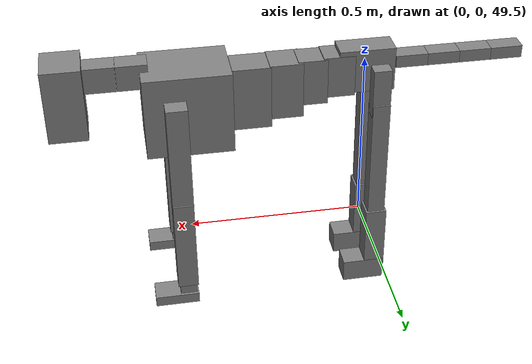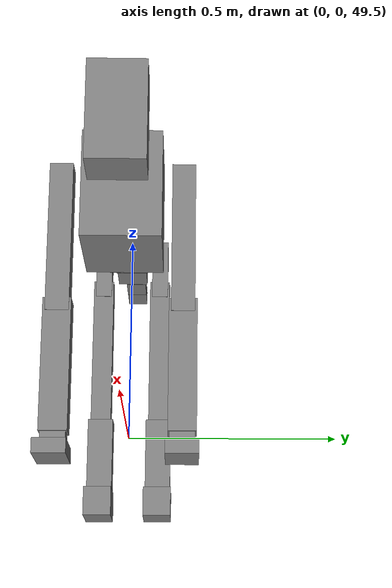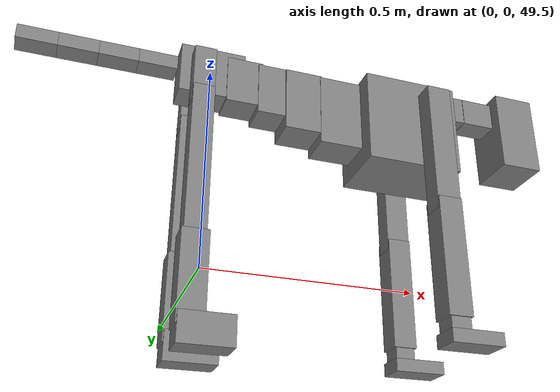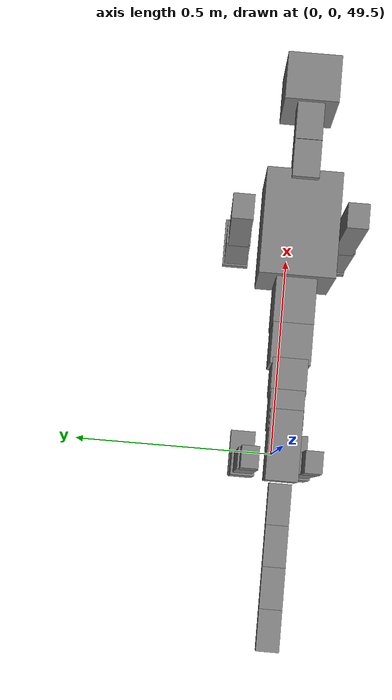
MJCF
<mujoco model="dog">

    <default>
        <joint armature="0.02" stiffness="1" damping="0.2" limited="true"/>
        <geom condim="3" friction="1 0.05 0.05" margin="0.01"/>
        <motor ctrllimited="true" ctrlrange="-1.0 1.0" forcelimited="true" gear="50"/>
    </default>

    <compiler inertiafromgeom="true" angle="radian"/>

    <option timestep="0.016" iterations="50" tolerance="1e-10" solver="Newton" jacobian="dense" cone="pyramidal"/>

    <size nconmax="20000" njmax="60000" nstack="5000000"/>
    <visual>
        <map force="0.1" zfar="30"/>
        <rgba haze="0.15 0.25 0.35 1"/>
        <quality shadowsize="2048"/>
        <global offwidth="800" offheight="800"/>
    </visual>

    <asset>
        <texture type="skybox" builtin="gradient" rgb1="0.3 0.5 0.7" rgb2="0 0 0" width="512" height="512"/>
        <texture name="texplane" type="2d" builtin="checker" rgb1=".2 .3 .4" rgb2=".1 0.15 0.2" width="512" height="512"
                 mark="cross" markrgb=".8 .8 .8"/>
        <texture name="texgeom" type="cube" builtin="flat" mark="cross" width="127" height="1278" rgb1="0.8 0.6 0.4"
                 rgb2="0.8 0.6 0.4" markrgb="1 1 1" random="0.01"/>

        <material name="matplane" reflectance="0.3" texture="texplane" texrepeat="1 1" texuniform="true"/>
        <material name="matgeom" texture="texgeom" texuniform="true" rgba="0.8 0.6 .4 1"/>
    </asset>

    <worldbody>
        <geom name="floor" pos="0 0 0" size="0 0 .25" type="plane" material="matplane" condim="3"/>

        <light directional="false" diffuse=".2 .2 .2" specular="0 0 0" pos="0 0 5" dir="0 0 -1" castshadow="false"/>
        <light mode="targetbodycom" target="torso" directional="false" diffuse=".8 .8 .8" specular="0.3 0.3 0.3"
               pos="0 0 4.0" dir="0 0 -1"/>

        <body name="root" pos="0 0 50">
            <freejoint name="root_1"/>
            <geom type="box" pos="0 0 -0.02" size="0.0774  0.0358  0.063" density="2030"/>

            <body name="spine1" pos="0.054 0 0">
                <joint name="spine1_y" axis="0 1 0" range="0 0.7" limited="true"/>
                <geom type="box" pos="0.02375 0 -0.03" size="0.04375  0.0375  0.05985" density="2030"/>

                <body name="spine2" pos="0.0612 0 0">
                    <joint name="spine2_y" axis="0 1 0" range="-0.15 0.15" limited="true"/>
                    <geom type="box" pos="0.03555  0  -0.04" size="0.04055  0.039  0.06615" density="2030"/>

                    <body name="spine3" pos="0.0730 0 0">
                        <joint name="spine3_y" axis="0 1 0" range="-0.15 0.15" limited="true"/>
                        <geom type="box" pos="0.03555  0  -0.057" size="0.04555  0.0445  0.081" density="2030"/>

                        <body name="spine4" pos="0.0780 0 0">
                            <joint name="spine4_y" axis="0 1 0" range="-0.15 0.15" limited="true"/>
                            <geom type="box" pos="0.05265  0  -0.07" size="0.05265  0.045  0.09135" density="2030"/>

                            <body name="torso" pos="0.1082 0 0">
                                <joint name="torso_y" axis="0 1 0" range="-0.15 0.15" limited="true"/>
                                <geom type="box" pos="0.11925  0  -0.085" size="0.11925  0.085  0.11745"
                                      density="2030"/>

                                <body name="neck1" pos="0.2160  0   0.0180">
                                    <joint name="neck1_y" axis="0 1 0" range="-1.2  -1" limited="true"/>
                                    <geom type="box" pos="0.0423  0  0" size="0.0423  0.03  0.036" density="2325"/>

                                    <body name="neck2" pos="0.0853  0  0">
                                        <joint name="neck2_y" axis="0 1 0" range="0.1  0" limited="true"/>
                                        <geom type="box" pos="0.0423  0  0" size="0.0423  0.03  0.036" density="2325"/>

                                        <body name="head" pos="0.0853  0  0">
                                            <joint name="head_y" axis="0 1 0" range="-0.3  -0.2" limited="true"/>
                                            <geom type="box" pos="0.0531  0  -0.055" size="0.0531  0.06  0.1044"
                                                  density="4030"/>

                                        </body>
                                    </body>
                                </body>

                                <body name="front_shoulder" pos="0.156  0   -0.0480">
                                    <joint name="front_shoulder_y" axis="0 1 0" range="-1 1.5" limited="true"/>
                                    <geom type="box" pos="0 0.13 -0.1357" size="0.0291  0.0248  0.1623" density="1158"/>
                                    <geom type="box" pos="0 -0.13 -0.1357" size="0.0291  0.0248  0.1623"
                                          density="1158"/>

                                    <body name="front_elbow" pos="0  0  -0.2713">
                                        <joint name="front_elbow_y" axis="0 1 0" range="-2 0" limited="true"/>
                                        <geom type="box" pos="0 0.13 -0.1393" size="0.0287  0.0294  0.1393"
                                              density="1081"/>
                                        <geom type="box" pos="0 -0.13 -0.1393" size="0.0287  0.0294  0.1393"
                                              density="1081"/>

                                        <body name="front_wrist" pos="0  0  -0.2787">
                                            <joint name="front_wrist_y" axis="0 1 0" range="-0.2 0" limited="true"/>
                                            <geom type="box" pos="0 0.13 -0.0216" size="0.0236  0.0262  0.0347"
                                                  density="1664"/>
                                            <geom type="box" pos="0 -0.13 -0.0216" size="0.0236  0.0262  0.0347"
                                                  density="1664"/>

                                            <body name="front_finger_end" pos="0  0  -0.0431">
                                                <joint name="front_finger_y" axis="0 1 0" range="-0.4 1"
                                                       limited="true"/>
                                                <geom type="box" pos="0.0338  0.13  -0.0003"
                                                      size="0.0620  0.0338  0.0153" density="1515"/>
                                                <geom type="box" pos="0.0338  -0.13  -0.0003"
                                                      size="0.0620  0.0338  0.0153" density="1515"/>

                                            </body>

                                        </body>
                                    </body>
                                </body>

                            </body>
                        </body>
                    </body>
                </body>
            </body>

            <body name="back_hip" pos="-0.03 0 -0.018">
                <joint name="back_hip_y" axis="0 1 0" range="-1.5 0.3" limited="true"/>
                <geom type="box" pos="0 0.07 -0.0490" size="0.0250  0.0196  0.0718" density="1154"/>
                <geom type="box" pos="0 -0.07 -0.0490" size="0.0250  0.0196  0.0718" density="1154"/>

                <body name="back_knee" pos="0  0  -0.0981">
                    <joint name="back_knee_y" axis="0 1 0" range="0 2.8" limited="true"/>
                    <geom type="box" pos="0 0.07 -0.1743" size="0.0246  0.0242  0.1898" density="1227"/>
                    <geom type="box" pos="0 -0.07 -0.1743" size="0.0246  0.0242  0.1898" density="1227"/>

                    <body name="back_ankle" pos="0  0  -0.3486">
                        <joint name="back_ankle_y" axis="0 1 0" range="-2.2 0" limited="true"/>
                        <geom type="box" pos="0 0.07 -0.0889" size="0.0299  0.0299  0.1001" density="1284"/>
                        <geom type="box" pos="0 -0.07 -0.0889" size="0.0299  0.0299  0.1001" density="1284"/>

                        <body name="back_toe_end" pos="0  0  -0.1777">
                            <joint name="back_toe_y" axis="0 1 0" range="-0.4 1" limited="true"/>
                            <geom type="box" pos="0.0324  0.07  -0.0185" size="0.0593  0.0324  0.0335" density="1515"/>
                            <geom type="box" pos="0.0324  -0.07  -0.0185" size="0.0593  0.0324  0.0335" density="1515"/>

                        </body>
                    </body>
                </body>
            </body>

            <body name="tail1" pos="-0.074 0 -0.006">
                <joint name="tail1_y" axis="0 1 0" range="-0.2 0.2" limited="true"/>
                <geom type="box" pos="-0.0536  0  0" size="0.045  0.025  0.0175" density="1587"/>

                <body name="tail2" pos="-0.09 0 0">
                    <joint name="tail2_y" axis="0 1 0" range="-0.2 0.2" limited="true"/>
                    <geom type="box" pos="-0.0536  0  0" size="0.045  0.025  0.0175" density="1587"/>

                    <body name="tail3" pos="-0.09 0 0">
                        <joint name="tail3_y" axis="0 1 0" range="-0.2 0.2" limited="true"/>
                        <geom type="box" pos="-0.0536  0  0" size="0.045  0.025  0.0175" density="1587"/>

                        <body name="tail4" pos="-0.09 0 0">
                            <joint name="tail4_y" axis="0 1 0" range="-0.2 0.2" limited="true"/>
                            <geom type="box" pos="-0.0536  0  0" size="0.045  0.025  0.0175" density="1587"/>

                        </body>
                    </body>
                </body>
            </body>
        </body>
    </worldbody>

    <actuator>
        <motor joint="spine1_y" forcerange="-150 150     "/>
        <motor joint="spine2_y" forcerange="-150 150     "/>
        <motor joint="spine3_y" forcerange="-150 150     "/>
        <motor joint="spine4_y" forcerange="-150 150     "/>
        <motor joint="torso_y" forcerange="-150 150     "/>
        <motor joint="neck1_y" forcerange="-100 100       "/>
        <motor joint="neck2_y" forcerange="-100 100       "/>
        <motor joint="head_y" forcerange="-150 150       "/>
        <motor joint="front_shoulder_y" forcerange="-103.57 162.06"/>
        <motor joint="front_elbow_y" forcerange="-179.76 133.72"/>
        <motor joint="front_wrist_y" forcerange="-108.96 100.61"/>
        <motor joint="front_finger_y" forcerange="-48.63 91.69"/>
        <motor joint="back_hip_y" forcerange="-261.44 200.16"/>
        <motor joint="back_knee_y" forcerange="-263.76 288.72"/>
        <motor joint="back_angle_y" forcerange="-172.62 205.00"/>
        <motor joint="back_toe_y" forcerange="-72.96 105.92"/>
        <motor joint="tail1_y" forcerange="-50 50     "/>
        <motor joint="tail2_y" forcerange="-50 50     "/>
        <motor joint="tail3_y" forcerange="-50 50     "/>
        <motor joint="tail4_y" forcerange="-50 50     "/>
    </actuator>
</mujoco>
